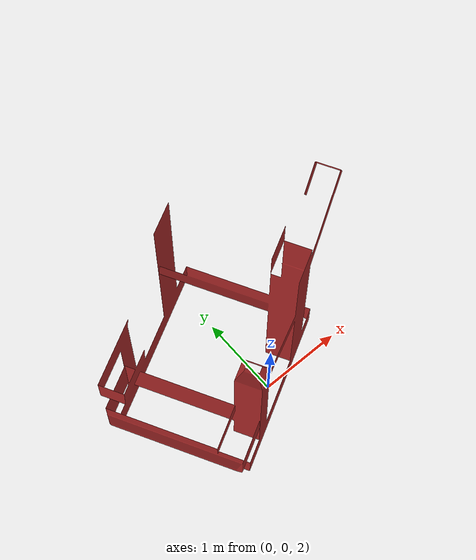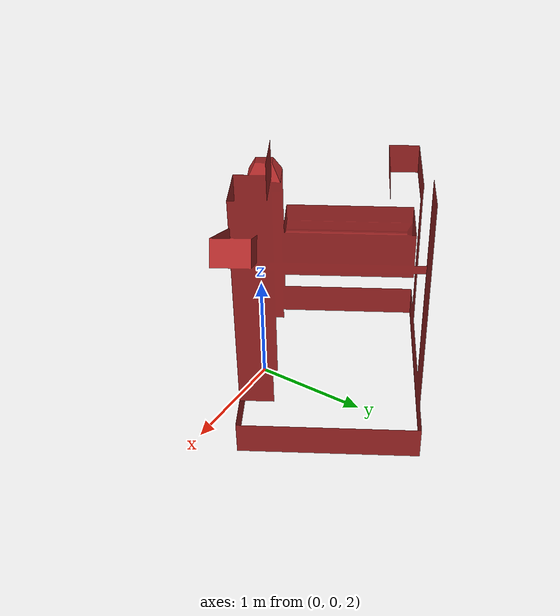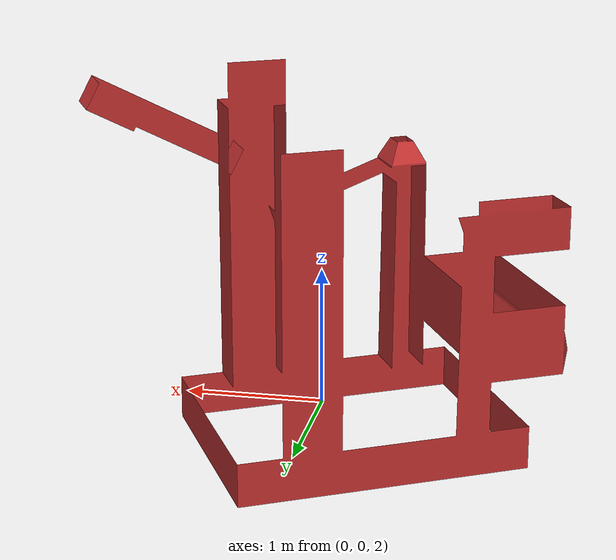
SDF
<?xml version="1.0"?>

<sdf version="1.6">
  <world name="default">
    <physics name="1ms" type="ignored">
      <max_step_size>0.001</max_step_size>
      <real_time_factor>1.0</real_time_factor>
    </physics>
    <plugin
      filename="gz-sim-physics-system"
      name="gz::sim::systems::Physics">
    </plugin>
    <plugin
      filename="gz-sim-sensors-system"
      name="gz::sim::systems::Sensors">
      <render_engine>ogre2</render_engine>
    </plugin>
    <plugin
      filename="gz-sim-user-commands-system"
      name="gz::sim::systems::UserCommands">
    </plugin>
    <plugin
      filename="gz-sim-scene-broadcaster-system"
      name="gz::sim::systems::SceneBroadcaster">
    </plugin>

    <gui fullscreen="0">
      <!-- 3D scene -->
      <plugin filename="MinimalScene" name="3D View">
        <gz-gui>
          <title>3D View</title>
          <property type="bool" key="showTitleBar">false</property>
          <property type="string" key="state">docked</property>
        </gz-gui>

        <engine>ogre2</engine>
        <scene>scene</scene>
        <ambient_light>0.4 0.4 0.4</ambient_light>
        <background_color>0.8 0.8 0.8</background_color>
        <camera_pose>-6 0 6 0 0.5 0</camera_pose>
      </plugin>

      <!-- Plugins that add functionality to the scene -->
      <plugin filename="EntityContextMenuPlugin" name="Entity context menu">
        <gz-gui>
          <property key="state" type="string">floating</property>
          <property key="width" type="double">5</property>
          <property key="height" type="double">5</property>
          <property key="showTitleBar" type="bool">false</property>
        </gz-gui>
      </plugin>
      <plugin filename="GzSceneManager" name="Scene Manager">
        <gz-gui>
          <property key="resizable" type="bool">false</property>
          <property key="width" type="double">5</property>
          <property key="height" type="double">5</property>
          <property key="state" type="string">floating</property>
          <property key="showTitleBar" type="bool">false</property>
        </gz-gui>
      </plugin>
      <plugin filename="InteractiveViewControl" name="Interactive view control">
        <gz-gui>
          <property key="resizable" type="bool">false</property>
          <property key="width" type="double">5</property>
          <property key="height" type="double">5</property>
          <property key="state" type="string">floating</property>
          <property key="showTitleBar" type="bool">false</property>
        </gz-gui>
      </plugin>
      <plugin filename="CameraTracking" name="Camera Tracking">
        <gz-gui>
          <property key="resizable" type="bool">false</property>
          <property key="width" type="double">5</property>
          <property key="height" type="double">5</property>
          <property key="state" type="string">floating</property>
          <property key="showTitleBar" type="bool">false</property>
        </gz-gui>
      </plugin>

      <!-- World control -->
      <plugin filename="WorldControl" name="World control">
        <gz-gui>
          <title>World control</title>
          <property type="bool" key="showTitleBar">false</property>
          <property type="bool" key="resizable">false</property>
          <property type="double" key="height">72</property>
          <property type="double" key="z">1</property>

          <property type="string" key="state">floating</property>
          <anchors target="3D View">
            <line own="left" target="left"/>
            <line own="bottom" target="bottom"/>
          </anchors>
        </gz-gui>

        <play_pause>true</play_pause>
        <step>true</step>
        <start_paused>false</start_paused>
        <use_event>true</use_event>
      </plugin>

      <!-- World statistics -->
      <plugin filename="WorldStats" name="World stats">
        <gz-gui>
          <title>World stats</title>
          <property type="bool" key="showTitleBar">false</property>
          <property type="bool" key="resizable">false</property>
          <property type="double" key="height">110</property>
          <property type="double" key="width">290</property>
          <property type="double" key="z">1</property>

          <property type="string" key="state">floating</property>
          <anchors target="3D View">
            <line own="right" target="right"/>
            <line own="bottom" target="bottom"/>
          </anchors>
        </gz-gui>

        <sim_time>true</sim_time>
        <real_time>true</real_time>
        <real_time_factor>true</real_time_factor>
        <iterations>true</iterations>
      </plugin>

      <!-- Inspector -->
      <plugin filename="ComponentInspector" name="Component inspector">
        <gz-gui>
          <property type="string" key="state">docked</property>
        </gz-gui>
      </plugin>

      <!-- Entity tree -->
      <plugin filename="EntityTree" name="Entity tree">
        <gz-gui>
          <property type="string" key="state">docked</property>
        </gz-gui>
      </plugin>

      <!-- Camera Viewer -->
      <plugin filename="ImageDisplay" name="Image Display">
        <gz-gui>
          <title>RGB camera</title>
          <property key="state" type="string">floating</property>
          <property type="double" key="width">350</property>
          <property type="double" key="height">315</property>
        </gz-gui>
        <topic>/sensor/camera</topic>
        <topic_picker>false</topic_picker>
      </plugin>
      <plugin filename="ImageDisplay" name="Image Display 2">
        <gz-gui>
          <title>Depth camera</title>
          <property key="state" type="string">floating</property>
          <property type="double" key="width">350</property>
          <property type="double" key="height">315</property>
          <property type="double" key="x">500</property>
        </gz-gui>
        <topic>/sensor/depth_camera</topic>
        <topic_picker>false</topic_picker>
      </plugin>

    </gui>

    <include>
      <uri>
        https://fuel.gazebosim.org/1.0/OpenRobotics/models/Sun
      </uri>
    </include>

    <!-- cylinder target 1 -->

    <!-- cylinder target 2 -->

    <model name="fpfh_localization_target">
      <static>true</static>
      <pose>0 0 2.1 0 0 0.5</pose>
      <link name="link">
        <collision name="collision">
          <geometry>
            <mesh>
              <uri>file:///root/HOST/dave_ws/src/dave/models/custom_models/meshes/assymetric_obj5_mod.stl</uri>
              <scale>1.0 1.0 1.0</scale>
            </mesh>
          </geometry>
        </collision>
        <visual name="visual">
          <geometry>
            <mesh>
              <uri>file:///root/HOST/dave_ws/src/dave/models/custom_models/meshes/assymetric_obj5_mod.stl</uri>
              <scale>1.0 1.0 1.0</scale>
            </mesh>
          </geometry>
          <material>
            <ambient>0.8 0.2 0.2 1</ambient>
            <diffuse>0.8 0.2 0.2 1</diffuse>
          </material>
        </visual>
      </link>
    </model>

  </world>
</sdf>
